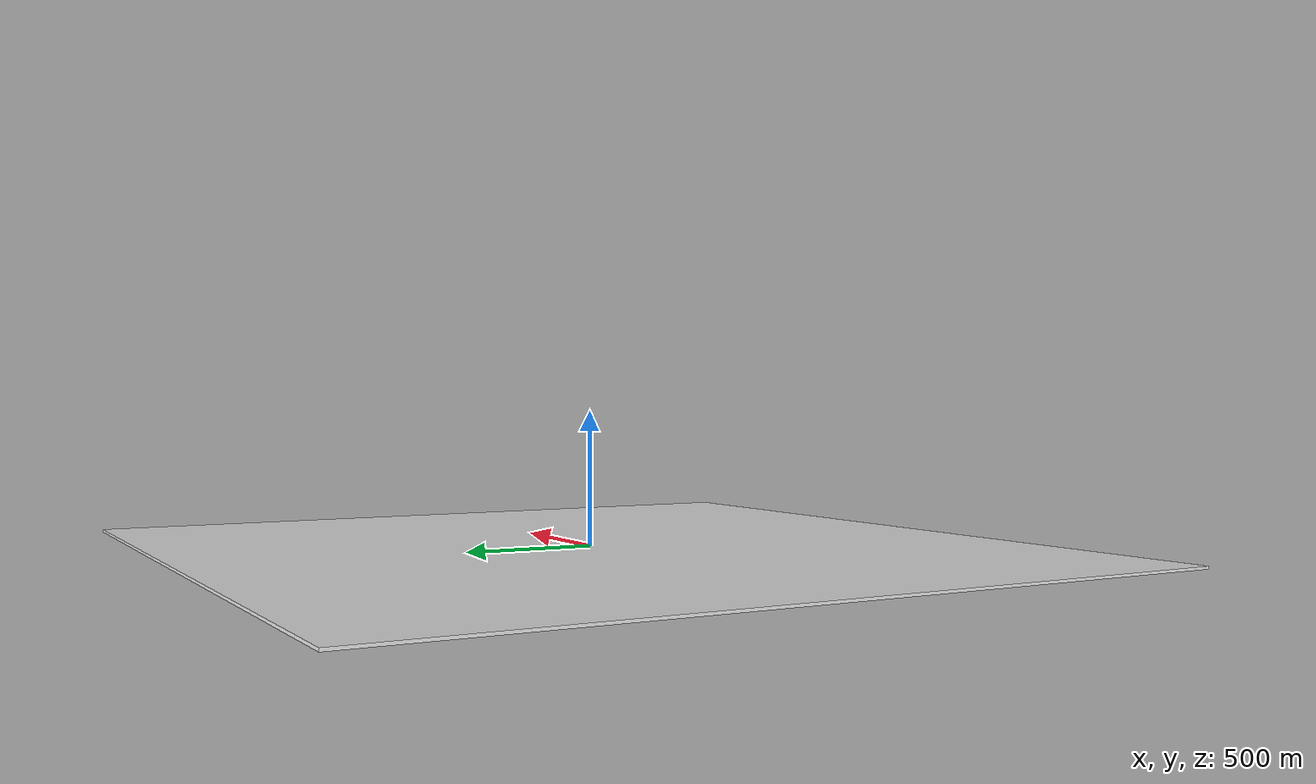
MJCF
<?xml version="1.0" ?>
<mujoco model="pycram_floor">
	<compiler meshdir="pycram_floor/meshes" texturedir="pycram_floor/textures" angle="radian" autolimits="true" balanceinertia="true" boundmass="0.000001" boundinertia="0.000001"/>
	<default>
		<default class="pycram_floor_visual">
			<geom contype="0" conaffinity="0"/>
		</default>
		<default class="pycram_floor_collision">
			<geom rgba="0.9 0.9 0.9 1.0"/>
		</default>
	</default>
	<asset/>
	<worldbody>
		<body name="pycram_floor" pos="0.0 0.0 0.0" quat="1.0 0.0 0.0 0.0">
			<body name="planeLink" pos="0.0 0.0 0.0" quat="1.0 0.0 0.0 0.0">
				<inertial mass="0.0" pos="0.0 0.0 0.0" quat="1.0 0.0 0.0 0.0" diaginertia="0.0 0.0 0.0"/>
				<geom name="SM_planeLink_collision_0" type="box" pos="0.0 0.0 -5.0" quat="1.0 0.0 0.0 0.0" size="1500.0 1500.0 5.0" class="pycram_floor_collision"/>
			</body>
		</body>
	</worldbody>
	<equality/>
</mujoco>
